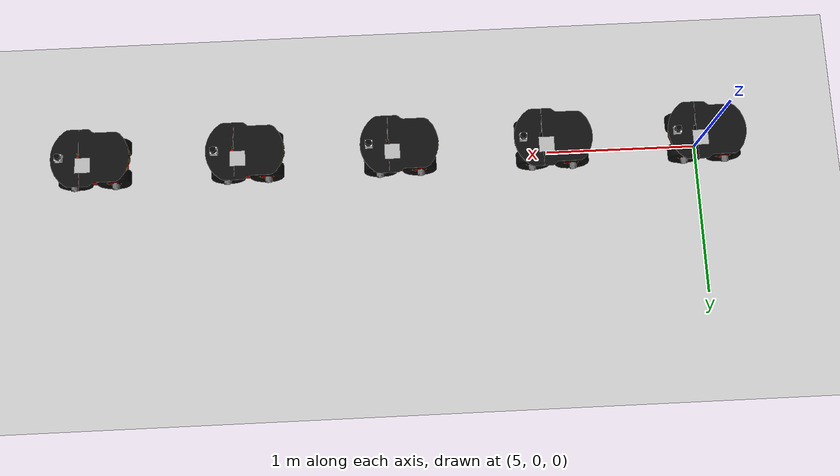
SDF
<sdf version="1.4">
 <world name="default">
  <model name="ground_plane">
   <static>1</static>
   <link name="link">
    <collision name="collision">
     <geometry><plane><normal>0 0 1</normal><size>100 100</size></plane></geometry>
     <surface><friction><ode><mu>100</mu><mu2>50</mu2></ode></friction></surface>
    </collision>
    <visual name="visual">
     <cast_shadows>0</cast_shadows>
     <geometry><plane><normal>0 0 1</normal><size>100 100</size></plane></geometry>
     <material>
      <script><uri>file://media/materials/scripts/gazebo.material</uri><name>Gazebo/Grey</name></script>
     </material>
    </visual>
    <velocity_decay><linear>0</linear><angular>0</angular></velocity_decay>
   </link>
  </model>
  <model name="pioneer3at_6">
   <pose>5 0 0.3 0 -0 0</pose>
   <static>0</static>
   <link name="chassis">
    <inertial>
     <mass>500</mass>
     <inertia><ixx>0.3338</ixx><ixy>0</ixy><ixz>0</ixz><iyy>0.4783</iyy><iyz>0</iyz><izz>0.3338</izz></inertia>
    </inertial>
    <collision name="collision"><geometry><box><size>0.501 0.2 0.19</size></box></geometry></collision>
    <visual name="visual">
     <geometry><mesh><uri>model://pioneer3at/meshes/chassis.dae</uri></mesh></geometry>
    </visual>
    <velocity_decay><linear>0</linear><angular>0</angular></velocity_decay>
   </link>
   <link name="right_front_wheel">
    <pose>0.125 -0.1005 -0.06 1.5707 -0 0</pose>
    <collision name="collision">
     <geometry><cylinder><radius>0.11</radius><length>0.075</length></cylinder></geometry>
     <surface><friction><ode><mu>1</mu><mu2>1</mu2><slip1>0.5</slip1><slip2>0</slip2></ode></friction></surface>
    </collision>
    <visual name="visual">
     <geometry><mesh><uri>model://pioneer3at/meshes/wheel.dae</uri></mesh></geometry>
    </visual>
    <velocity_decay><linear>0</linear><angular>0</angular></velocity_decay>
    <inertial>
     <inertia><ixx>1</ixx><ixy>0</ixy><ixz>0</ixz><iyy>1</iyy><iyz>0</iyz><izz>1</izz></inertia>
     <mass>1</mass>
    </inertial>
   </link>
   <link name="left_front_wheel">
    <pose>0.125 0.1005 -0.06 1.5707 -0 0</pose>
    <collision name="collision">
     <geometry><cylinder><radius>0.11</radius><length>0.075</length></cylinder></geometry>
     <surface><friction><ode><mu>1</mu><mu2>1</mu2><slip1>0.5</slip1><slip2>0</slip2></ode></friction></surface>
    </collision>
    <visual name="visual">
     <geometry><mesh><uri>model://pioneer3at/meshes/wheel.dae</uri></mesh></geometry>
    </visual>
    <velocity_decay><linear>0</linear><angular>0</angular></velocity_decay>
    <inertial>
     <inertia><ixx>1</ixx><ixy>0</ixy><ixz>0</ixz><iyy>1</iyy><iyz>0</iyz><izz>1</izz></inertia>
     <mass>1</mass>
    </inertial>
   </link>
   <link name="right_rear_wheel">
    <pose>-0.125 -0.1005 -0.06 1.5707 -0 0</pose>
    <collision name="collision">
     <geometry><cylinder><radius>0.11</radius><length>0.075</length></cylinder></geometry>
     <surface><friction><ode><mu>1</mu><mu2>1</mu2><slip1>0.5</slip1><slip2>0</slip2></ode></friction></surface>
    </collision>
    <visual name="visual">
     <geometry><mesh><uri>model://pioneer3at/meshes/wheel.dae</uri></mesh></geometry>
    </visual>
    <velocity_decay><linear>0</linear><angular>0</angular></velocity_decay>
    <inertial>
     <inertia><ixx>1</ixx><ixy>0</ixy><ixz>0</ixz><iyy>1</iyy><iyz>0</iyz><izz>1</izz></inertia>
     <mass>1</mass>
    </inertial>
   </link>
   <link name="left_rear_wheel">
    <pose>-0.125 0.1005 -0.06 1.5707 -0 0</pose>
    <collision name="collision">
     <geometry><cylinder><radius>0.11</radius><length>0.075</length></cylinder></geometry>
     <surface><friction><ode><mu>1</mu><mu2>1</mu2><slip1>0.5</slip1><slip2>0</slip2></ode></friction></surface>
    </collision>
    <visual name="visual">
     <geometry><mesh><scale>1 1 1</scale><uri>model://pioneer3at/meshes/wheel.dae</uri></mesh></geometry>
    </visual>
    <velocity_decay><linear>0</linear><angular>0</angular></velocity_decay>
    <inertial>
     <inertia><ixx>1</ixx><ixy>0</ixy><ixz>0</ixz><iyy>1</iyy><iyz>0</iyz><izz>1</izz></inertia>
     <mass>1</mass>
    </inertial>
   </link>
   <joint name="right_front" type="revolute">
    <child>right_front_wheel</child>
    <parent>chassis</parent>
    <axis><xyz>0 1 0</xyz><limit><lower>-1e+16</lower><upper>1e+16</upper></limit></axis>
   </joint>
   <joint name="right_rear" type="revolute">
    <child>right_rear_wheel</child>
    <parent>chassis</parent>
    <axis><xyz>0 1 0</xyz><limit><lower>-1e+16</lower><upper>1e+16</upper></limit></axis>
   </joint>
   <joint name="left_front" type="revolute">
    <child>left_front_wheel</child>
    <parent>chassis</parent>
    <axis><xyz>0 1 0</xyz><limit><lower>-1e+16</lower><upper>1e+16</upper></limit></axis>
   </joint>
   <joint name="left_rear" type="revolute">
    <child>left_rear_wheel</child>
    <parent>chassis</parent>
    <axis><xyz>0 1 0</xyz><limit><lower>-1e+16</lower><upper>1e+16</upper></limit></axis>
   </joint>
   <link name="hokuyo::link">
    <inertial>
     <mass>0.1</mass>
     <inertia><ixx>1</ixx><ixy>0</ixy><ixz>0</ixz><iyy>1</iyy><iyz>0</iyz><izz>1</izz></inertia>
    </inertial>
    <visual name="visual"><geometry><mesh><uri>model://hokuyo/meshes/hokuyo.dae</uri></mesh></geometry></visual>
    <collision name="collision-base">
     <pose>0 0 -0.0145 0 -0 0</pose>
     <geometry><box><size>0.05 0.05 0.041</size></box></geometry>
    </collision>
    <collision name="collision-top">
     <pose>0 0 0.0205 0 -0 0</pose>
     <geometry><cylinder><radius>0.021</radius><length>0.029</length></cylinder></geometry>
    </collision>
    <sensor name="laser" type="ray">
     <pose>0.15 0 -0.1 0 -0 0</pose>
     <ray>
      <scan>
       <horizontal>
        <samples>1040</samples>
        <resolution>1</resolution>
        <min_angle>-2.26889</min_angle>
        <max_angle>2.2689</max_angle>
       </horizontal>
      </scan>
      <range><min>0.1</min><max>30</max><resolution>0.01</resolution></range>
     </ray>
     <plugin name="gazebo_ros_hokuyo_laser_controller" filename="libgazebo_ros_laser.so">
      <gaussianNoise>0.01</gaussianNoise>
      <alwaysOn>true</alwaysOn>
      <hokuyoMinIntensity>101</hokuyoMinIntensity>
      <updateRate>40.0</updateRate>
      <topicName>/pioneer_6/scan</topicName>
      <frameName>laser</frameName>
     </plugin>
     <always_on>1</always_on>
     <update_rate>30</update_rate>
     <visualize>1</visualize>
    </sensor>
    <velocity_decay><linear>0</linear><angular>0</angular></velocity_decay>
    <pose>0.2 0 0.13 0 -0 0</pose>
   </link>
   <joint name="hokuyo_joint" type="revolute">
    <child>hokuyo::link</child>
    <parent>chassis</parent>
    <axis><xyz>0 0 1</xyz><limit><upper>0</upper><lower>0</lower></limit></axis>
   </joint>
   <link name="camera::link">
    <pose>0.05 0.05 0.05 0 -0 0</pose>
    <inertial>
     <mass>0.1</mass>
     <inertia><ixx>1</ixx><ixy>0</ixy><ixz>0</ixz><iyy>1</iyy><iyz>0</iyz><izz>1</izz></inertia>
    </inertial>
    <collision name="collision"><geometry><box><size>0.1 0.1 0.1</size></box></geometry></collision>
    <visual name="visual"><geometry><box><size>0.1 0.1 0.1</size></box></geometry></visual>
    <sensor name="camera" type="camera">
     <camera name="__default__">
      <horizontal_fov>0.752</horizontal_fov>
      <image><width>640</width><height>480</height></image>
      <clip><near>0.1</near><far>100</far></clip>
     </camera>
     <always_on>1</always_on>
     <update_rate>15</update_rate>
     <visualize>0</visualize>
     <plugin name="ros_camera" filename="libgazebo_ros_camera.so">
      <robotNamespace>/pioneer_6</robotNamespace>
     </plugin>
    </sensor>
    <velocity_decay><linear>0</linear><angular>0</angular></velocity_decay>
   </link>
   <joint name="camera_joint" type="revolute">
    <child>camera::link</child>
    <parent>chassis</parent>
    <axis><xyz>0 0 1</xyz><limit><upper>0</upper><lower>0</lower></limit></axis>
   </joint>
   <plugin name="skid_steer_drive_controller" filename="libgazebo_ros_skid_steer_drive.so">
    <updateRate>100.0</updateRate>
    <robotNamespace>/pioneer_6</robotNamespace>
    <leftFrontJoint>left_front</leftFrontJoint>
    <rightFrontJoint>right_front</rightFrontJoint>
    <leftRearJoint>left_rear</leftRearJoint>
    <rightRearJoint>right_rear</rightRearJoint>
    <wheelSeparation>0.4</wheelSeparation>
    <wheelDiameter>0.215</wheelDiameter>
    <robotBaseFrame>/pioneer_6/odom_tf</robotBaseFrame>
    <torque>120</torque>
    <commandTopic>cmd_vel</commandTopic>
    <broadcastTF>1</broadcastTF>
   </plugin>
   <plugin name="imu_en_ros" filename="libgazebo_ros_imu.so">
    <bodyName>chassis</bodyName>
    <robotNamespace>/pioneer_6</robotNamespace>
    <topicName>imu</topicName>
    <gaussianNoise>0.00</gaussianNoise>
    <updateRate>45.0</updateRate>
   </plugin>
  </model>
  <model name="pioneer3at_7">
   <pose>6 0 0.3 0 -0 0</pose>
   <static>0</static>
   <link name="chassis">
    <inertial>
     <mass>500</mass>
     <inertia><ixx>0.3338</ixx><ixy>0</ixy><ixz>0</ixz><iyy>0.4783</iyy><iyz>0</iyz><izz>0.3338</izz></inertia>
    </inertial>
    <collision name="collision"><geometry><box><size>0.501 0.2 0.19</size></box></geometry></collision>
    <visual name="visual">
     <geometry><mesh><uri>model://pioneer3at/meshes/chassis.dae</uri></mesh></geometry>
    </visual>
    <velocity_decay><linear>0</linear><angular>0</angular></velocity_decay>
   </link>
   <link name="right_front_wheel">
    <pose>0.125 -0.1005 -0.06 1.5707 -0 0</pose>
    <collision name="collision">
     <geometry><cylinder><radius>0.11</radius><length>0.075</length></cylinder></geometry>
     <surface><friction><ode><mu>1</mu><mu2>1</mu2><slip1>0.5</slip1><slip2>0</slip2></ode></friction></surface>
    </collision>
    <visual name="visual">
     <geometry><mesh><uri>model://pioneer3at/meshes/wheel.dae</uri></mesh></geometry>
    </visual>
    <velocity_decay><linear>0</linear><angular>0</angular></velocity_decay>
    <inertial>
     <inertia><ixx>1</ixx><ixy>0</ixy><ixz>0</ixz><iyy>1</iyy><iyz>0</iyz><izz>1</izz></inertia>
     <mass>1</mass>
    </inertial>
   </link>
   <link name="left_front_wheel">
    <pose>0.125 0.1005 -0.06 1.5707 -0 0</pose>
    <collision name="collision">
     <geometry><cylinder><radius>0.11</radius><length>0.075</length></cylinder></geometry>
     <surface><friction><ode><mu>1</mu><mu2>1</mu2><slip1>0.5</slip1><slip2>0</slip2></ode></friction></surface>
    </collision>
    <visual name="visual">
     <geometry><mesh><uri>model://pioneer3at/meshes/wheel.dae</uri></mesh></geometry>
    </visual>
    <velocity_decay><linear>0</linear><angular>0</angular></velocity_decay>
    <inertial>
     <inertia><ixx>1</ixx><ixy>0</ixy><ixz>0</ixz><iyy>1</iyy><iyz>0</iyz><izz>1</izz></inertia>
     <mass>1</mass>
    </inertial>
   </link>
   <link name="right_rear_wheel">
    <pose>-0.125 -0.1005 -0.06 1.5707 -0 0</pose>
    <collision name="collision">
     <geometry><cylinder><radius>0.11</radius><length>0.075</length></cylinder></geometry>
     <surface><friction><ode><mu>1</mu><mu2>1</mu2><slip1>0.5</slip1><slip2>0</slip2></ode></friction></surface>
    </collision>
    <visual name="visual">
     <geometry><mesh><uri>model://pioneer3at/meshes/wheel.dae</uri></mesh></geometry>
    </visual>
    <velocity_decay><linear>0</linear><angular>0</angular></velocity_decay>
    <inertial>
     <inertia><ixx>1</ixx><ixy>0</ixy><ixz>0</ixz><iyy>1</iyy><iyz>0</iyz><izz>1</izz></inertia>
     <mass>1</mass>
    </inertial>
   </link>
   <link name="left_rear_wheel">
    <pose>-0.125 0.1005 -0.06 1.5707 -0 0</pose>
    <collision name="collision">
     <geometry><cylinder><radius>0.11</radius><length>0.075</length></cylinder></geometry>
     <surface><friction><ode><mu>1</mu><mu2>1</mu2><slip1>0.5</slip1><slip2>0</slip2></ode></friction></surface>
    </collision>
    <visual name="visual">
     <geometry><mesh><scale>1 1 1</scale><uri>model://pioneer3at/meshes/wheel.dae</uri></mesh></geometry>
    </visual>
    <velocity_decay><linear>0</linear><angular>0</angular></velocity_decay>
    <inertial>
     <inertia><ixx>1</ixx><ixy>0</ixy><ixz>0</ixz><iyy>1</iyy><iyz>0</iyz><izz>1</izz></inertia>
     <mass>1</mass>
    </inertial>
   </link>
   <joint name="right_front" type="revolute">
    <child>right_front_wheel</child>
    <parent>chassis</parent>
    <axis><xyz>0 1 0</xyz><limit><lower>-1e+16</lower><upper>1e+16</upper></limit></axis>
   </joint>
   <joint name="right_rear" type="revolute">
    <child>right_rear_wheel</child>
    <parent>chassis</parent>
    <axis><xyz>0 1 0</xyz><limit><lower>-1e+16</lower><upper>1e+16</upper></limit></axis>
   </joint>
   <joint name="left_front" type="revolute">
    <child>left_front_wheel</child>
    <parent>chassis</parent>
    <axis><xyz>0 1 0</xyz><limit><lower>-1e+16</lower><upper>1e+16</upper></limit></axis>
   </joint>
   <joint name="left_rear" type="revolute">
    <child>left_rear_wheel</child>
    <parent>chassis</parent>
    <axis><xyz>0 1 0</xyz><limit><lower>-1e+16</lower><upper>1e+16</upper></limit></axis>
   </joint>
   <link name="hokuyo::link">
    <inertial>
     <mass>0.1</mass>
     <inertia><ixx>1</ixx><ixy>0</ixy><ixz>0</ixz><iyy>1</iyy><iyz>0</iyz><izz>1</izz></inertia>
    </inertial>
    <visual name="visual"><geometry><mesh><uri>model://hokuyo/meshes/hokuyo.dae</uri></mesh></geometry></visual>
    <collision name="collision-base">
     <pose>0 0 -0.0145 0 -0 0</pose>
     <geometry><box><size>0.05 0.05 0.041</size></box></geometry>
    </collision>
    <collision name="collision-top">
     <pose>0 0 0.0205 0 -0 0</pose>
     <geometry><cylinder><radius>0.021</radius><length>0.029</length></cylinder></geometry>
    </collision>
    <sensor name="laser" type="ray">
     <pose>0.15 0 -0.1 0 -0 0</pose>
     <ray>
      <scan>
       <horizontal>
        <samples>1040</samples>
        <resolution>1</resolution>
        <min_angle>-2.26889</min_angle>
        <max_angle>2.2689</max_angle>
       </horizontal>
      </scan>
      <range><min>0.1</min><max>30</max><resolution>0.01</resolution></range>
     </ray>
     <plugin name="gazebo_ros_hokuyo_laser_controller" filename="libgazebo_ros_laser.so">
      <gaussianNoise>0.01</gaussianNoise>
      <alwaysOn>true</alwaysOn>
      <hokuyoMinIntensity>101</hokuyoMinIntensity>
      <updateRate>40.0</updateRate>
      <topicName>/pioneer_7/scan</topicName>
      <frameName>laser</frameName>
     </plugin>
     <always_on>1</always_on>
     <update_rate>30</update_rate>
     <visualize>1</visualize>
    </sensor>
    <velocity_decay><linear>0</linear><angular>0</angular></velocity_decay>
    <pose>0.2 0 0.13 0 -0 0</pose>
   </link>
   <joint name="hokuyo_joint" type="revolute">
    <child>hokuyo::link</child>
    <parent>chassis</parent>
    <axis><xyz>0 0 1</xyz><limit><upper>0</upper><lower>0</lower></limit></axis>
   </joint>
   <link name="camera::link">
    <pose>0.05 0.05 0.05 0 -0 0</pose>
    <inertial>
     <mass>0.1</mass>
     <inertia><ixx>1</ixx><ixy>0</ixy><ixz>0</ixz><iyy>1</iyy><iyz>0</iyz><izz>1</izz></inertia>
    </inertial>
    <collision name="collision"><geometry><box><size>0.1 0.1 0.1</size></box></geometry></collision>
    <visual name="visual"><geometry><box><size>0.1 0.1 0.1</size></box></geometry></visual>
    <sensor name="camera" type="camera">
     <camera name="__default__">
      <horizontal_fov>0.752</horizontal_fov>
      <image><width>640</width><height>480</height></image>
      <clip><near>0.1</near><far>100</far></clip>
     </camera>
     <always_on>1</always_on>
     <update_rate>15</update_rate>
     <visualize>0</visualize>
     <plugin name="ros_camera" filename="libgazebo_ros_camera.so">
      <robotNamespace>/pioneer_7</robotNamespace>
     </plugin>
    </sensor>
    <velocity_decay><linear>0</linear><angular>0</angular></velocity_decay>
   </link>
   <joint name="camera_joint" type="revolute">
    <child>camera::link</child>
    <parent>chassis</parent>
    <axis><xyz>0 0 1</xyz><limit><upper>0</upper><lower>0</lower></limit></axis>
   </joint>
   <plugin name="skid_steer_drive_controller" filename="libgazebo_ros_skid_steer_drive.so">
    <updateRate>100.0</updateRate>
    <robotNamespace>/pioneer_7</robotNamespace>
    <leftFrontJoint>left_front</leftFrontJoint>
    <rightFrontJoint>right_front</rightFrontJoint>
    <leftRearJoint>left_rear</leftRearJoint>
    <rightRearJoint>right_rear</rightRearJoint>
    <wheelSeparation>0.4</wheelSeparation>
    <wheelDiameter>0.215</wheelDiameter>
    <robotBaseFrame>/pioneer_7/odom_tf</robotBaseFrame>
    <torque>120</torque>
    <commandTopic>cmd_vel</commandTopic>
    <broadcastTF>1</broadcastTF>
   </plugin>
   <plugin name="imu_en_ros" filename="libgazebo_ros_imu.so">
    <bodyName>chassis</bodyName>
    <robotNamespace>/pioneer_7</robotNamespace>
    <topicName>imu</topicName>
    <gaussianNoise>0.00</gaussianNoise>
    <updateRate>45.0</updateRate>
   </plugin>
  </model>
  <model name="pioneer3at_8">
   <pose>7 0 0.3 0 -0 0</pose>
   <static>0</static>
   <link name="chassis">
    <inertial>
     <mass>500</mass>
     <inertia><ixx>0.3338</ixx><ixy>0</ixy><ixz>0</ixz><iyy>0.4783</iyy><iyz>0</iyz><izz>0.3338</izz></inertia>
    </inertial>
    <collision name="collision"><geometry><box><size>0.501 0.2 0.19</size></box></geometry></collision>
    <visual name="visual">
     <geometry><mesh><uri>model://pioneer3at/meshes/chassis.dae</uri></mesh></geometry>
    </visual>
    <velocity_decay><linear>0</linear><angular>0</angular></velocity_decay>
   </link>
   <link name="right_front_wheel">
    <pose>0.125 -0.1005 -0.06 1.5707 -0 0</pose>
    <collision name="collision">
     <geometry><cylinder><radius>0.11</radius><length>0.075</length></cylinder></geometry>
     <surface><friction><ode><mu>1</mu><mu2>1</mu2><slip1>0.5</slip1><slip2>0</slip2></ode></friction></surface>
    </collision>
    <visual name="visual">
     <geometry><mesh><uri>model://pioneer3at/meshes/wheel.dae</uri></mesh></geometry>
    </visual>
    <velocity_decay><linear>0</linear><angular>0</angular></velocity_decay>
    <inertial>
     <inertia><ixx>1</ixx><ixy>0</ixy><ixz>0</ixz><iyy>1</iyy><iyz>0</iyz><izz>1</izz></inertia>
     <mass>1</mass>
    </inertial>
   </link>
   <link name="left_front_wheel">
    <pose>0.125 0.1005 -0.06 1.5707 -0 0</pose>
    <collision name="collision">
     <geometry><cylinder><radius>0.11</radius><length>0.075</length></cylinder></geometry>
     <surface><friction><ode><mu>1</mu><mu2>1</mu2><slip1>0.5</slip1><slip2>0</slip2></ode></friction></surface>
    </collision>
    <visual name="visual">
     <geometry><mesh><uri>model://pioneer3at/meshes/wheel.dae</uri></mesh></geometry>
    </visual>
    <velocity_decay><linear>0</linear><angular>0</angular></velocity_decay>
    <inertial>
     <inertia><ixx>1</ixx><ixy>0</ixy><ixz>0</ixz><iyy>1</iyy><iyz>0</iyz><izz>1</izz></inertia>
     <mass>1</mass>
    </inertial>
   </link>
   <link name="right_rear_wheel">
    <pose>-0.125 -0.1005 -0.06 1.5707 -0 0</pose>
    <collision name="collision">
     <geometry><cylinder><radius>0.11</radius><length>0.075</length></cylinder></geometry>
     <surface><friction><ode><mu>1</mu><mu2>1</mu2><slip1>0.5</slip1><slip2>0</slip2></ode></friction></surface>
    </collision>
    <visual name="visual">
     <geometry><mesh><uri>model://pioneer3at/meshes/wheel.dae</uri></mesh></geometry>
    </visual>
    <velocity_decay><linear>0</linear><angular>0</angular></velocity_decay>
    <inertial>
     <inertia><ixx>1</ixx><ixy>0</ixy><ixz>0</ixz><iyy>1</iyy><iyz>0</iyz><izz>1</izz></inertia>
     <mass>1</mass>
    </inertial>
   </link>
   <link name="left_rear_wheel">
    <pose>-0.125 0.1005 -0.06 1.5707 -0 0</pose>
    <collision name="collision">
     <geometry><cylinder><radius>0.11</radius><length>0.075</length></cylinder></geometry>
     <surface><friction><ode><mu>1</mu><mu2>1</mu2><slip1>0.5</slip1><slip2>0</slip2></ode></friction></surface>
    </collision>
    <visual name="visual">
     <geometry><mesh><scale>1 1 1</scale><uri>model://pioneer3at/meshes/wheel.dae</uri></mesh></geometry>
    </visual>
    <velocity_decay><linear>0</linear><angular>0</angular></velocity_decay>
    <inertial>
     <inertia><ixx>1</ixx><ixy>0</ixy><ixz>0</ixz><iyy>1</iyy><iyz>0</iyz><izz>1</izz></inertia>
     <mass>1</mass>
    </inertial>
   </link>
   <joint name="right_front" type="revolute">
    <child>right_front_wheel</child>
    <parent>chassis</parent>
    <axis><xyz>0 1 0</xyz><limit><lower>-1e+16</lower><upper>1e+16</upper></limit></axis>
   </joint>
   <joint name="right_rear" type="revolute">
    <child>right_rear_wheel</child>
    <parent>chassis</parent>
    <axis><xyz>0 1 0</xyz><limit><lower>-1e+16</lower><upper>1e+16</upper></limit></axis>
   </joint>
   <joint name="left_front" type="revolute">
    <child>left_front_wheel</child>
    <parent>chassis</parent>
    <axis><xyz>0 1 0</xyz><limit><lower>-1e+16</lower><upper>1e+16</upper></limit></axis>
   </joint>
   <joint name="left_rear" type="revolute">
    <child>left_rear_wheel</child>
    <parent>chassis</parent>
    <axis><xyz>0 1 0</xyz><limit><lower>-1e+16</lower><upper>1e+16</upper></limit></axis>
   </joint>
   <link name="hokuyo::link">
    <inertial>
     <mass>0.1</mass>
     <inertia><ixx>1</ixx><ixy>0</ixy><ixz>0</ixz><iyy>1</iyy><iyz>0</iyz><izz>1</izz></inertia>
    </inertial>
    <visual name="visual"><geometry><mesh><uri>model://hokuyo/meshes/hokuyo.dae</uri></mesh></geometry></visual>
    <collision name="collision-base">
     <pose>0 0 -0.0145 0 -0 0</pose>
     <geometry><box><size>0.05 0.05 0.041</size></box></geometry>
    </collision>
    <collision name="collision-top">
     <pose>0 0 0.0205 0 -0 0</pose>
     <geometry><cylinder><radius>0.021</radius><length>0.029</length></cylinder></geometry>
    </collision>
    <sensor name="laser" type="ray">
     <pose>0.15 0 -0.1 0 -0 0</pose>
     <ray>
      <scan>
       <horizontal>
        <samples>1040</samples>
        <resolution>1</resolution>
        <min_angle>-2.26889</min_angle>
        <max_angle>2.2689</max_angle>
       </horizontal>
      </scan>
      <range><min>0.1</min><max>30</max><resolution>0.01</resolution></range>
     </ray>
     <plugin name="gazebo_ros_hokuyo_laser_controller" filename="libgazebo_ros_laser.so">
      <gaussianNoise>0.01</gaussianNoise>
      <alwaysOn>true</alwaysOn>
      <hokuyoMinIntensity>101</hokuyoMinIntensity>
      <updateRate>40.0</updateRate>
      <topicName>/pioneer_8/scan</topicName>
      <frameName>laser</frameName>
     </plugin>
     <always_on>1</always_on>
     <update_rate>30</update_rate>
     <visualize>1</visualize>
    </sensor>
    <velocity_decay><linear>0</linear><angular>0</angular></velocity_decay>
    <pose>0.2 0 0.13 0 -0 0</pose>
   </link>
   <joint name="hokuyo_joint" type="revolute">
    <child>hokuyo::link</child>
    <parent>chassis</parent>
    <axis><xyz>0 0 1</xyz><limit><upper>0</upper><lower>0</lower></limit></axis>
   </joint>
   <link name="camera::link">
    <pose>0.05 0.05 0.05 0 -0 0</pose>
    <inertial>
     <mass>0.1</mass>
     <inertia><ixx>1</ixx><ixy>0</ixy><ixz>0</ixz><iyy>1</iyy><iyz>0</iyz><izz>1</izz></inertia>
    </inertial>
    <collision name="collision"><geometry><box><size>0.1 0.1 0.1</size></box></geometry></collision>
    <visual name="visual"><geometry><box><size>0.1 0.1 0.1</size></box></geometry></visual>
    <sensor name="camera" type="camera">
     <camera name="__default__">
      <horizontal_fov>0.752</horizontal_fov>
      <image><width>640</width><height>480</height></image>
      <clip><near>0.1</near><far>100</far></clip>
     </camera>
     <always_on>1</always_on>
     <update_rate>15</update_rate>
     <visualize>0</visualize>
     <plugin name="ros_camera" filename="libgazebo_ros_camera.so">
      <robotNamespace>/pioneer_8</robotNamespace>
     </plugin>
    </sensor>
    <velocity_decay><linear>0</linear><angular>0</angular></velocity_decay>
   </link>
   <joint name="camera_joint" type="revolute">
    <child>camera::link</child>
    <parent>chassis</parent>
    <axis><xyz>0 0 1</xyz><limit><upper>0</upper><lower>0</lower></limit></axis>
   </joint>
   <plugin name="skid_steer_drive_controller" filename="libgazebo_ros_skid_steer_drive.so">
    <updateRate>100.0</updateRate>
    <robotNamespace>/pioneer_8</robotNamespace>
    <leftFrontJoint>left_front</leftFrontJoint>
    <rightFrontJoint>right_front</rightFrontJoint>
    <leftRearJoint>left_rear</leftRearJoint>
    <rightRearJoint>right_rear</rightRearJoint>
    <wheelSeparation>0.4</wheelSeparation>
    <wheelDiameter>0.215</wheelDiameter>
    <robotBaseFrame>/pioneer_8/odom_tf</robotBaseFrame>
    <torque>120</torque>
    <commandTopic>cmd_vel</commandTopic>
    <broadcastTF>1</broadcastTF>
   </plugin>
   <plugin name="imu_en_ros" filename="libgazebo_ros_imu.so">
    <bodyName>chassis</bodyName>
    <robotNamespace>/pioneer_8</robotNamespace>
    <topicName>imu</topicName>
    <gaussianNoise>0.00</gaussianNoise>
    <updateRate>45.0</updateRate>
   </plugin>
  </model>
  <model name="pioneer3at_9">
   <pose>8 0 0.3 0 -0 0</pose>
   <static>0</static>
   <link name="chassis">
    <inertial>
     <mass>500</mass>
     <inertia><ixx>0.3338</ixx><ixy>0</ixy><ixz>0</ixz><iyy>0.4783</iyy><iyz>0</iyz><izz>0.3338</izz></inertia>
    </inertial>
    <collision name="collision"><geometry><box><size>0.501 0.2 0.19</size></box></geometry></collision>
    <visual name="visual">
     <geometry><mesh><uri>model://pioneer3at/meshes/chassis.dae</uri></mesh></geometry>
    </visual>
    <velocity_decay><linear>0</linear><angular>0</angular></velocity_decay>
   </link>
   <link name="right_front_wheel">
    <pose>0.125 -0.1005 -0.06 1.5707 -0 0</pose>
    <collision name="collision">
     <geometry><cylinder><radius>0.11</radius><length>0.075</length></cylinder></geometry>
     <surface><friction><ode><mu>1</mu><mu2>1</mu2><slip1>0.5</slip1><slip2>0</slip2></ode></friction></surface>
    </collision>
    <visual name="visual">
     <geometry><mesh><uri>model://pioneer3at/meshes/wheel.dae</uri></mesh></geometry>
    </visual>
    <velocity_decay><linear>0</linear><angular>0</angular></velocity_decay>
    <inertial>
     <inertia><ixx>1</ixx><ixy>0</ixy><ixz>0</ixz><iyy>1</iyy><iyz>0</iyz><izz>1</izz></inertia>
     <mass>1</mass>
    </inertial>
   </link>
   <link name="left_front_wheel">
    <pose>0.125 0.1005 -0.06 1.5707 -0 0</pose>
    <collision name="collision">
     <geometry><cylinder><radius>0.11</radius><length>0.075</length></cylinder></geometry>
     <surface><friction><ode><mu>1</mu><mu2>1</mu2><slip1>0.5</slip1><slip2>0</slip2></ode></friction></surface>
    </collision>
    <visual name="visual">
     <geometry><mesh><uri>model://pioneer3at/meshes/wheel.dae</uri></mesh></geometry>
    </visual>
    <velocity_decay><linear>0</linear><angular>0</angular></velocity_decay>
    <inertial>
     <inertia><ixx>1</ixx><ixy>0</ixy><ixz>0</ixz><iyy>1</iyy><iyz>0</iyz><izz>1</izz></inertia>
     <mass>1</mass>
    </inertial>
   </link>
   <link name="right_rear_wheel">
    <pose>-0.125 -0.1005 -0.06 1.5707 -0 0</pose>
    <collision name="collision">
     <geometry><cylinder><radius>0.11</radius><length>0.075</length></cylinder></geometry>
     <surface><friction><ode><mu>1</mu><mu2>1</mu2><slip1>0.5</slip1><slip2>0</slip2></ode></friction></surface>
    </collision>
    <visual name="visual">
     <geometry><mesh><uri>model://pioneer3at/meshes/wheel.dae</uri></mesh></geometry>
    </visual>
    <velocity_decay><linear>0</linear><angular>0</angular></velocity_decay>
    <inertial>
     <inertia><ixx>1</ixx><ixy>0</ixy><ixz>0</ixz><iyy>1</iyy><iyz>0</iyz><izz>1</izz></inertia>
     <mass>1</mass>
    </inertial>
   </link>
   <link name="left_rear_wheel">
    <pose>-0.125 0.1005 -0.06 1.5707 -0 0</pose>
    <collision name="collision">
     <geometry><cylinder><radius>0.11</radius><length>0.075</length></cylinder></geometry>
     <surface><friction><ode><mu>1</mu><mu2>1</mu2><slip1>0.5</slip1><slip2>0</slip2></ode></friction></surface>
    </collision>
    <visual name="visual">
     <geometry><mesh><scale>1 1 1</scale><uri>model://pioneer3at/meshes/wheel.dae</uri></mesh></geometry>
    </visual>
    <velocity_decay><linear>0</linear><angular>0</angular></velocity_decay>
    <inertial>
     <inertia><ixx>1</ixx><ixy>0</ixy><ixz>0</ixz><iyy>1</iyy><iyz>0</iyz><izz>1</izz></inertia>
     <mass>1</mass>
    </inertial>
   </link>
   <joint name="right_front" type="revolute">
    <child>right_front_wheel</child>
    <parent>chassis</parent>
    <axis><xyz>0 1 0</xyz><limit><lower>-1e+16</lower><upper>1e+16</upper></limit></axis>
   </joint>
   <joint name="right_rear" type="revolute">
    <child>right_rear_wheel</child>
    <parent>chassis</parent>
    <axis><xyz>0 1 0</xyz><limit><lower>-1e+16</lower><upper>1e+16</upper></limit></axis>
   </joint>
   <joint name="left_front" type="revolute">
    <child>left_front_wheel</child>
    <parent>chassis</parent>
    <axis><xyz>0 1 0</xyz><limit><lower>-1e+16</lower><upper>1e+16</upper></limit></axis>
   </joint>
   <joint name="left_rear" type="revolute">
    <child>left_rear_wheel</child>
    <parent>chassis</parent>
    <axis><xyz>0 1 0</xyz><limit><lower>-1e+16</lower><upper>1e+16</upper></limit></axis>
   </joint>
   <link name="hokuyo::link">
    <inertial>
     <mass>0.1</mass>
     <inertia><ixx>1</ixx><ixy>0</ixy><ixz>0</ixz><iyy>1</iyy><iyz>0</iyz><izz>1</izz></inertia>
    </inertial>
    <visual name="visual"><geometry><mesh><uri>model://hokuyo/meshes/hokuyo.dae</uri></mesh></geometry></visual>
    <collision name="collision-base">
     <pose>0 0 -0.0145 0 -0 0</pose>
     <geometry><box><size>0.05 0.05 0.041</size></box></geometry>
    </collision>
    <collision name="collision-top">
     <pose>0 0 0.0205 0 -0 0</pose>
     <geometry><cylinder><radius>0.021</radius><length>0.029</length></cylinder></geometry>
    </collision>
    <sensor name="laser" type="ray">
     <pose>0.15 0 -0.1 0 -0 0</pose>
     <ray>
      <scan>
       <horizontal>
        <samples>1040</samples>
        <resolution>1</resolution>
        <min_angle>-2.26889</min_angle>
        <max_angle>2.2689</max_angle>
       </horizontal>
      </scan>
      <range><min>0.1</min><max>30</max><resolution>0.01</resolution></range>
     </ray>
     <plugin name="gazebo_ros_hokuyo_laser_controller" filename="libgazebo_ros_laser.so">
      <gaussianNoise>0.01</gaussianNoise>
      <alwaysOn>true</alwaysOn>
      <hokuyoMinIntensity>101</hokuyoMinIntensity>
      <updateRate>40.0</updateRate>
      <topicName>/pioneer_9/scan</topicName>
      <frameName>laser</frameName>
     </plugin>
     <always_on>1</always_on>
     <update_rate>30</update_rate>
     <visualize>1</visualize>
    </sensor>
    <velocity_decay><linear>0</linear><angular>0</angular></velocity_decay>
    <pose>0.2 0 0.13 0 -0 0</pose>
   </link>
   <joint name="hokuyo_joint" type="revolute">
    <child>hokuyo::link</child>
    <parent>chassis</parent>
    <axis><xyz>0 0 1</xyz><limit><upper>0</upper><lower>0</lower></limit></axis>
   </joint>
   <link name="camera::link">
    <pose>0.05 0.05 0.05 0 -0 0</pose>
    <inertial>
     <mass>0.1</mass>
     <inertia><ixx>1</ixx><ixy>0</ixy><ixz>0</ixz><iyy>1</iyy><iyz>0</iyz><izz>1</izz></inertia>
    </inertial>
    <collision name="collision"><geometry><box><size>0.1 0.1 0.1</size></box></geometry></collision>
    <visual name="visual"><geometry><box><size>0.1 0.1 0.1</size></box></geometry></visual>
    <sensor name="camera" type="camera">
     <camera name="__default__">
      <horizontal_fov>0.752</horizontal_fov>
      <image><width>640</width><height>480</height></image>
      <clip><near>0.1</near><far>100</far></clip>
     </camera>
     <always_on>1</always_on>
     <update_rate>15</update_rate>
     <visualize>0</visualize>
     <plugin name="ros_camera" filename="libgazebo_ros_camera.so">
      <robotNamespace>/pioneer_9</robotNamespace>
     </plugin>
    </sensor>
    <velocity_decay><linear>0</linear><angular>0</angular></velocity_decay>
   </link>
   <joint name="camera_joint" type="revolute">
    <child>camera::link</child>
    <parent>chassis</parent>
    <axis><xyz>0 0 1</xyz><limit><upper>0</upper><lower>0</lower></limit></axis>
   </joint>
   <plugin name="skid_steer_drive_controller" filename="libgazebo_ros_skid_steer_drive.so">
    <updateRate>100.0</updateRate>
    <robotNamespace>/pioneer_9</robotNamespace>
    <leftFrontJoint>left_front</leftFrontJoint>
    <rightFrontJoint>right_front</rightFrontJoint>
    <leftRearJoint>left_rear</leftRearJoint>
    <rightRearJoint>right_rear</rightRearJoint>
    <wheelSeparation>0.4</wheelSeparation>
    <wheelDiameter>0.215</wheelDiameter>
    <robotBaseFrame>/pioneer_9/odom_tf</robotBaseFrame>
    <torque>120</torque>
    <commandTopic>cmd_vel</commandTopic>
    <broadcastTF>1</broadcastTF>
   </plugin>
   <plugin name="imu_en_ros" filename="libgazebo_ros_imu.so">
    <bodyName>chassis</bodyName>
    <robotNamespace>/pioneer_9</robotNamespace>
    <topicName>imu</topicName>
    <gaussianNoise>0.00</gaussianNoise>
    <updateRate>45.0</updateRate>
   </plugin>
  </model>
  <model name="pioneer3at_10">
   <pose>9 0 0.3 0 -0 0</pose>
   <static>0</static>
   <link name="chassis">
    <inertial>
     <mass>500</mass>
     <inertia><ixx>0.3338</ixx><ixy>0</ixy><ixz>0</ixz><iyy>0.4783</iyy><iyz>0</iyz><izz>0.3338</izz></inertia>
    </inertial>
    <collision name="collision"><geometry><box><size>0.501 0.2 0.19</size></box></geometry></collision>
    <visual name="visual">
     <geometry><mesh><uri>model://pioneer3at/meshes/chassis.dae</uri></mesh></geometry>
    </visual>
    <velocity_decay><linear>0</linear><angular>0</angular></velocity_decay>
   </link>
   <link name="right_front_wheel">
    <pose>0.125 -0.1005 -0.06 1.5707 -0 0</pose>
    <collision name="collision">
     <geometry><cylinder><radius>0.11</radius><length>0.075</length></cylinder></geometry>
     <surface><friction><ode><mu>1</mu><mu2>1</mu2><slip1>0.5</slip1><slip2>0</slip2></ode></friction></surface>
    </collision>
    <visual name="visual">
     <geometry><mesh><uri>model://pioneer3at/meshes/wheel.dae</uri></mesh></geometry>
    </visual>
    <velocity_decay><linear>0</linear><angular>0</angular></velocity_decay>
    <inertial>
     <inertia><ixx>1</ixx><ixy>0</ixy><ixz>0</ixz><iyy>1</iyy><iyz>0</iyz><izz>1</izz></inertia>
     <mass>1</mass>
    </inertial>
   </link>
   <link name="left_front_wheel">
    <pose>0.125 0.1005 -0.06 1.5707 -0 0</pose>
    <collision name="collision">
     <geometry><cylinder><radius>0.11</radius><length>0.075</length></cylinder></geometry>
     <surface><friction><ode><mu>1</mu><mu2>1</mu2><slip1>0.5</slip1><slip2>0</slip2></ode></friction></surface>
    </collision>
    <visual name="visual">
     <geometry><mesh><uri>model://pioneer3at/meshes/wheel.dae</uri></mesh></geometry>
    </visual>
    <velocity_decay><linear>0</linear><angular>0</angular></velocity_decay>
    <inertial>
     <inertia><ixx>1</ixx><ixy>0</ixy><ixz>0</ixz><iyy>1</iyy><iyz>0</iyz><izz>1</izz></inertia>
     <mass>1</mass>
    </inertial>
   </link>
   <link name="right_rear_wheel">
    <pose>-0.125 -0.1005 -0.06 1.5707 -0 0</pose>
    <collision name="collision">
     <geometry><cylinder><radius>0.11</radius><length>0.075</length></cylinder></geometry>
     <surface><friction><ode><mu>1</mu><mu2>1</mu2><slip1>0.5</slip1><slip2>0</slip2></ode></friction></surface>
    </collision>
    <visual name="visual">
     <geometry><mesh><uri>model://pioneer3at/meshes/wheel.dae</uri></mesh></geometry>
    </visual>
    <velocity_decay><linear>0</linear><angular>0</angular></velocity_decay>
    <inertial>
     <inertia><ixx>1</ixx><ixy>0</ixy><ixz>0</ixz><iyy>1</iyy><iyz>0</iyz><izz>1</izz></inertia>
     <mass>1</mass>
    </inertial>
   </link>
   <link name="left_rear_wheel">
    <pose>-0.125 0.1005 -0.06 1.5707 -0 0</pose>
    <collision name="collision">
     <geometry><cylinder><radius>0.11</radius><length>0.075</length></cylinder></geometry>
     <surface><friction><ode><mu>1</mu><mu2>1</mu2><slip1>0.5</slip1><slip2>0</slip2></ode></friction></surface>
    </collision>
    <visual name="visual">
     <geometry><mesh><scale>1 1 1</scale><uri>model://pioneer3at/meshes/wheel.dae</uri></mesh></geometry>
    </visual>
    <velocity_decay><linear>0</linear><angular>0</angular></velocity_decay>
    <inertial>
     <inertia><ixx>1</ixx><ixy>0</ixy><ixz>0</ixz><iyy>1</iyy><iyz>0</iyz><izz>1</izz></inertia>
     <mass>1</mass>
    </inertial>
   </link>
   <joint name="right_front" type="revolute">
    <child>right_front_wheel</child>
    <parent>chassis</parent>
    <axis><xyz>0 1 0</xyz><limit><lower>-1e+16</lower><upper>1e+16</upper></limit></axis>
   </joint>
   <joint name="right_rear" type="revolute">
    <child>right_rear_wheel</child>
    <parent>chassis</parent>
    <axis><xyz>0 1 0</xyz><limit><lower>-1e+16</lower><upper>1e+16</upper></limit></axis>
   </joint>
   <joint name="left_front" type="revolute">
    <child>left_front_wheel</child>
    <parent>chassis</parent>
    <axis><xyz>0 1 0</xyz><limit><lower>-1e+16</lower><upper>1e+16</upper></limit></axis>
   </joint>
   <joint name="left_rear" type="revolute">
    <child>left_rear_wheel</child>
    <parent>chassis</parent>
    <axis><xyz>0 1 0</xyz><limit><lower>-1e+16</lower><upper>1e+16</upper></limit></axis>
   </joint>
   <link name="hokuyo::link">
    <inertial>
     <mass>0.1</mass>
     <inertia><ixx>1</ixx><ixy>0</ixy><ixz>0</ixz><iyy>1</iyy><iyz>0</iyz><izz>1</izz></inertia>
    </inertial>
    <visual name="visual"><geometry><mesh><uri>model://hokuyo/meshes/hokuyo.dae</uri></mesh></geometry></visual>
    <collision name="collision-base">
     <pose>0 0 -0.0145 0 -0 0</pose>
     <geometry><box><size>0.05 0.05 0.041</size></box></geometry>
    </collision>
    <collision name="collision-top">
     <pose>0 0 0.0205 0 -0 0</pose>
     <geometry><cylinder><radius>0.021</radius><length>0.029</length></cylinder></geometry>
    </collision>
    <sensor name="laser" type="ray">
     <pose>0.15 0 -0.1 0 -0 0</pose>
     <ray>
      <scan>
       <horizontal>
        <samples>1040</samples>
        <resolution>1</resolution>
        <min_angle>-2.26889</min_angle>
        <max_angle>2.2689</max_angle>
       </horizontal>
      </scan>
      <range><min>0.1</min><max>30</max><resolution>0.01</resolution></range>
     </ray>
     <plugin name="gazebo_ros_hokuyo_laser_controller" filename="libgazebo_ros_laser.so">
      <gaussianNoise>0.01</gaussianNoise>
      <alwaysOn>true</alwaysOn>
      <hokuyoMinIntensity>101</hokuyoMinIntensity>
      <updateRate>40.0</updateRate>
      <topicName>/pioneer_10/scan</topicName>
      <frameName>laser</frameName>
     </plugin>
     <always_on>1</always_on>
     <update_rate>30</update_rate>
     <visualize>1</visualize>
    </sensor>
    <velocity_decay><linear>0</linear><angular>0</angular></velocity_decay>
    <pose>0.2 0 0.13 0 -0 0</pose>
   </link>
   <joint name="hokuyo_joint" type="revolute">
    <child>hokuyo::link</child>
    <parent>chassis</parent>
    <axis><xyz>0 0 1</xyz><limit><upper>0</upper><lower>0</lower></limit></axis>
   </joint>
   <link name="camera::link">
    <pose>0.05 0.05 0.05 0 -0 0</pose>
    <inertial>
     <mass>0.1</mass>
     <inertia><ixx>1</ixx><ixy>0</ixy><ixz>0</ixz><iyy>1</iyy><iyz>0</iyz><izz>1</izz></inertia>
    </inertial>
    <collision name="collision"><geometry><box><size>0.1 0.1 0.1</size></box></geometry></collision>
    <visual name="visual"><geometry><box><size>0.1 0.1 0.1</size></box></geometry></visual>
    <sensor name="camera" type="camera">
     <camera name="__default__">
      <horizontal_fov>0.752</horizontal_fov>
      <image><width>640</width><height>480</height></image>
      <clip><near>0.1</near><far>100</far></clip>
     </camera>
     <always_on>1</always_on>
     <update_rate>15</update_rate>
     <visualize>0</visualize>
     <plugin name="ros_camera" filename="libgazebo_ros_camera.so">
      <robotNamespace>/pioneer_10</robotNamespace>
     </plugin>
    </sensor>
    <velocity_decay><linear>0</linear><angular>0</angular></velocity_decay>
   </link>
   <joint name="camera_joint" type="revolute">
    <child>camera::link</child>
    <parent>chassis</parent>
    <axis><xyz>0 0 1</xyz><limit><upper>0</upper><lower>0</lower></limit></axis>
   </joint>
   <plugin name="skid_steer_drive_controller" filename="libgazebo_ros_skid_steer_drive.so">
    <updateRate>100.0</updateRate>
    <robotNamespace>/pioneer_10</robotNamespace>
    <leftFrontJoint>left_front</leftFrontJoint>
    <rightFrontJoint>right_front</rightFrontJoint>
    <leftRearJoint>left_rear</leftRearJoint>
    <rightRearJoint>right_rear</rightRearJoint>
    <wheelSeparation>0.4</wheelSeparation>
    <wheelDiameter>0.215</wheelDiameter>
    <robotBaseFrame>/pioneer_10/odom_tf</robotBaseFrame>
    <torque>120</torque>
    <commandTopic>cmd_vel</commandTopic>
    <broadcastTF>1</broadcastTF>
   </plugin>
   <plugin name="imu_en_ros" filename="libgazebo_ros_imu.so">
    <bodyName>chassis</bodyName>
    <robotNamespace>/pioneer_10</robotNamespace>
    <topicName>imu</topicName>
    <gaussianNoise>0.00</gaussianNoise>
    <updateRate>45.0</updateRate>
   </plugin>
  </model>
 </world>
</sdf>
